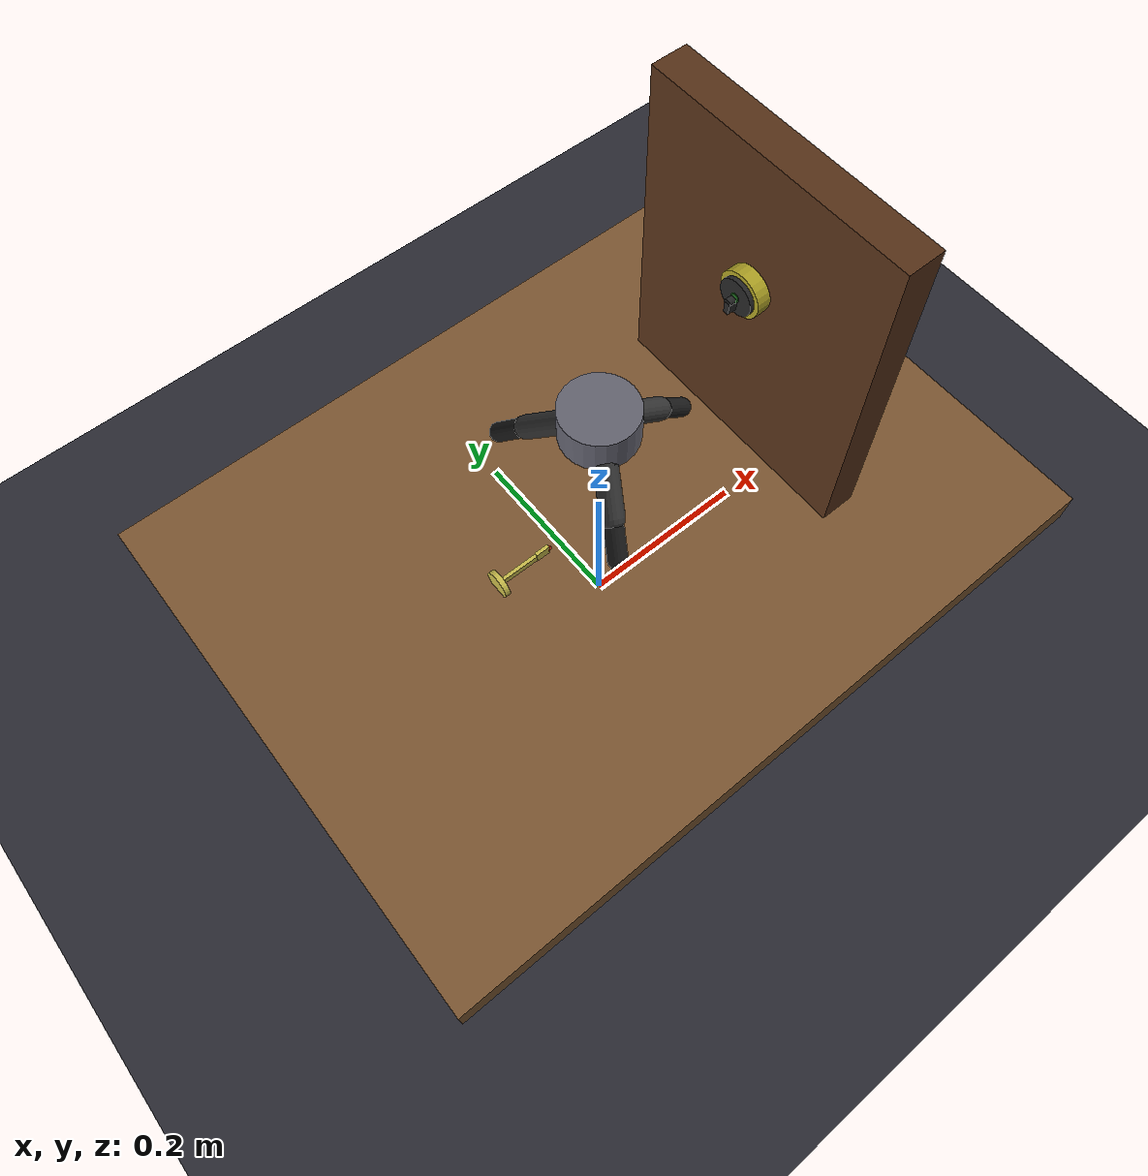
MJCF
<mujoco model="key_turn">
  <compiler angle="radian" autolimits="true"/>

  <option gravity="0 0 -9.81" timestep="0.002">
    <flag warmstart="enable"/>
  </option>

  <default>
    <joint damping="0.5" armature="0.01"/>
    <geom friction="1.0 0.5 0.5" condim="4" contype="1" conaffinity="1"/>
    <position kp="20" kv="2"/>
  </default>

  <asset>
    <texture type="skybox" builtin="gradient" rgb1="0.4 0.5 0.6" rgb2="0.1 0.1 0.15" width="512" height="512"/>
    <texture name="wood" type="2d" builtin="flat" rgb1="0.5 0.35 0.2" rgb2="0.45 0.3 0.18" width="512" height="512"/>
    <texture name="grid" type="2d" builtin="checker" rgb1="0.15 0.15 0.18" rgb2="0.2 0.2 0.23" width="512" height="512"/>

    <material name="table" texture="wood" texrepeat="4 4"/>
    <material name="floor" texture="grid" texrepeat="10 10"/>
    <material name="gripper_metal" rgba="0.4 0.4 0.45 1"/>
    <material name="finger_rubber" rgba="0.2 0.2 0.2 1"/>
    <material name="finger_tip" rgba="0.1 0.1 0.1 1"/>
    <material name="key_metal" rgba="0.8 0.75 0.3 1" specular="0.9" shininess="0.9"/>
    <material name="lock_body" rgba="0.7 0.65 0.15 1" specular="0.7" shininess="0.7"/>
    <material name="lock_face" rgba="0.15 0.15 0.15 1"/>
    <material name="door" rgba="0.35 0.2 0.1 1"/>
  </asset>

  <worldbody>
    <!-- Ground and table -->
    <geom name="floor" type="plane" size="1 1 0.1" material="floor" pos="0 0 0"/>
    <geom name="table" type="box" size="0.4 0.3 0.02" pos="0 0 0.15" material="table"/>

    <!-- Door section with lock (fixed) -->
    <body name="door_section" pos="0.2 0 0.15">
      <geom name="door_panel" type="box" size="0.02 0.15 0.2" pos="0 0 0.2" material="door"/>

      <!-- Lock body -->
      <body name="lock_body" pos="-0.02 0 0.25">
        <geom name="lock_housing" type="cylinder" size="0.025 0.015" euler="0 1.57 0" material="lock_body"/>
        <geom name="lock_face" type="cylinder" size="0.02 0.005" euler="0 1.57 0" pos="-0.015 0 0" material="lock_face"/>

        <!-- Keyhole (slot shape) -->
        <geom name="keyhole_top" type="cylinder" size="0.004 0.01" euler="0 1.57 0" pos="-0.02 0 0" material="lock_face"/>
        <geom name="keyhole_bottom" type="box" size="0.01 0.003 0.008" pos="-0.02 0 -0.006" material="lock_face"/>

        <!-- Lock cylinder (rotates with key) -->
        <body name="lock_cylinder" pos="-0.01 0 0">
          <joint name="lock_rotation" type="hinge" axis="1 0 0" range="0 1.57" damping="0.5"/>
          <geom name="cylinder_inner" type="cylinder" size="0.008 0.008" euler="0 1.57 0" material="lock_face" contype="0" conaffinity="0"/>
          <site name="lock_target" pos="-0.01 0 0" size="0.005" rgba="0 1 0 0.3"/>
        </body>
      </body>
    </body>

    <!-- Key (manipulatable) -->
    <body name="key" pos="-0.1 0 0.18">
      <freejoint name="key_joint"/>
      <!-- Key bow (handle) -->
      <geom name="key_bow" type="cylinder" size="0.015 0.003" euler="0 1.57 0" pos="-0.03 0 0" material="key_metal" mass="0.015"/>
      <!-- Key shaft -->
      <geom name="key_shaft" type="box" size="0.025 0.002 0.004" pos="0 0 0" material="key_metal" mass="0.005"/>
      <!-- Key bit (the part that goes in lock) -->
      <geom name="key_bit" type="box" size="0.008 0.002 0.006" pos="0.025 0 0" material="key_metal" mass="0.002"/>
      <site name="key_tip" pos="0.033 0 0" size="0.003" rgba="1 0 0 0.5"/>
    </body>

    <!-- Robotiq-style 3-Finger Gripper -->
    <body name="gripper_base" pos="0 0 0.35">
      <joint name="base_x" type="slide" axis="1 0 0" range="-0.3 0.3" damping="5"/>
      <joint name="base_y" type="slide" axis="0 1 0" range="-0.3 0.3" damping="5"/>
      <joint name="base_z" type="slide" axis="0 0 1" range="0.15 0.5" damping="5"/>
      <joint name="base_roll" type="hinge" axis="1 0 0" range="-3.14 3.14" damping="1"/>
      <joint name="base_pitch" type="hinge" axis="0 1 0" range="-1.57 1.57" damping="1"/>
      <joint name="base_yaw" type="hinge" axis="0 0 1" range="-3.14 3.14" damping="1"/>

      <geom name="palm" type="cylinder" size="0.04 0.02" material="gripper_metal"/>

      <!-- Finger A -->
      <body name="finger_a_proximal" pos="0.035 0 -0.02">
        <joint name="finger_a_base" type="hinge" axis="0 1 0" range="-0.2 1.4"/>
        <geom name="finger_a_prox" type="capsule" fromto="0 0 0 0.04 0 -0.03" size="0.012" material="finger_rubber"/>
        <body name="finger_a_distal" pos="0.04 0 -0.03">
          <joint name="finger_a_tip" type="hinge" axis="0 1 0" range="-0.4 1.2"/>
          <geom name="finger_a_dist" type="capsule" fromto="0 0 0 0.03 0 -0.025" size="0.01" material="finger_tip"/>
          <site name="finger_a_site" pos="0.03 0 -0.025" size="0.005"/>
        </body>
      </body>

      <!-- Finger B -->
      <body name="finger_b_proximal" pos="-0.0175 0.0303 -0.02" euler="0 0 2.094">
        <joint name="finger_b_base" type="hinge" axis="0 1 0" range="-0.2 1.4"/>
        <geom name="finger_b_prox" type="capsule" fromto="0 0 0 0.04 0 -0.03" size="0.012" material="finger_rubber"/>
        <body name="finger_b_distal" pos="0.04 0 -0.03">
          <joint name="finger_b_tip" type="hinge" axis="0 1 0" range="-0.4 1.2"/>
          <geom name="finger_b_dist" type="capsule" fromto="0 0 0 0.03 0 -0.025" size="0.01" material="finger_tip"/>
          <site name="finger_b_site" pos="0.03 0 -0.025" size="0.005"/>
        </body>
      </body>

      <!-- Finger C -->
      <body name="finger_c_proximal" pos="-0.0175 -0.0303 -0.02" euler="0 0 -2.094">
        <joint name="finger_c_base" type="hinge" axis="0 1 0" range="-0.2 1.4"/>
        <geom name="finger_c_prox" type="capsule" fromto="0 0 0 0.04 0 -0.03" size="0.012" material="finger_rubber"/>
        <body name="finger_c_distal" pos="0.04 0 -0.03">
          <joint name="finger_c_tip" type="hinge" axis="0 1 0" range="-0.4 1.2"/>
          <geom name="finger_c_dist" type="capsule" fromto="0 0 0 0.03 0 -0.025" size="0.01" material="finger_tip"/>
          <site name="finger_c_site" pos="0.03 0 -0.025" size="0.005"/>
        </body>
      </body>
    </body>
  </worldbody>

  <actuator>
    <position name="act_base_x" joint="base_x" kp="100" ctrlrange="-0.3 0.3"/>
    <position name="act_base_y" joint="base_y" kp="100" ctrlrange="-0.3 0.3"/>
    <position name="act_base_z" joint="base_z" kp="100" ctrlrange="0.15 0.5"/>
    <position name="act_base_roll" joint="base_roll" kp="50" ctrlrange="-3.14 3.14"/>
    <position name="act_base_pitch" joint="base_pitch" kp="50" ctrlrange="-1.57 1.57"/>
    <position name="act_base_yaw" joint="base_yaw" kp="50" ctrlrange="-3.14 3.14"/>
    <position name="act_finger_a_base" joint="finger_a_base" kp="10" ctrlrange="-0.2 1.4"/>
    <position name="act_finger_a_tip" joint="finger_a_tip" kp="5" ctrlrange="-0.4 1.2"/>
    <position name="act_finger_b_base" joint="finger_b_base" kp="10" ctrlrange="-0.2 1.4"/>
    <position name="act_finger_b_tip" joint="finger_b_tip" kp="5" ctrlrange="-0.4 1.2"/>
    <position name="act_finger_c_base" joint="finger_c_base" kp="10" ctrlrange="-0.2 1.4"/>
    <position name="act_finger_c_tip" joint="finger_c_tip" kp="5" ctrlrange="-0.4 1.2"/>
  </actuator>

  <sensor>
    <touch name="finger_a_touch" site="finger_a_site"/>
    <touch name="finger_b_touch" site="finger_b_site"/>
    <touch name="finger_c_touch" site="finger_c_site"/>
  </sensor>
</mujoco>
